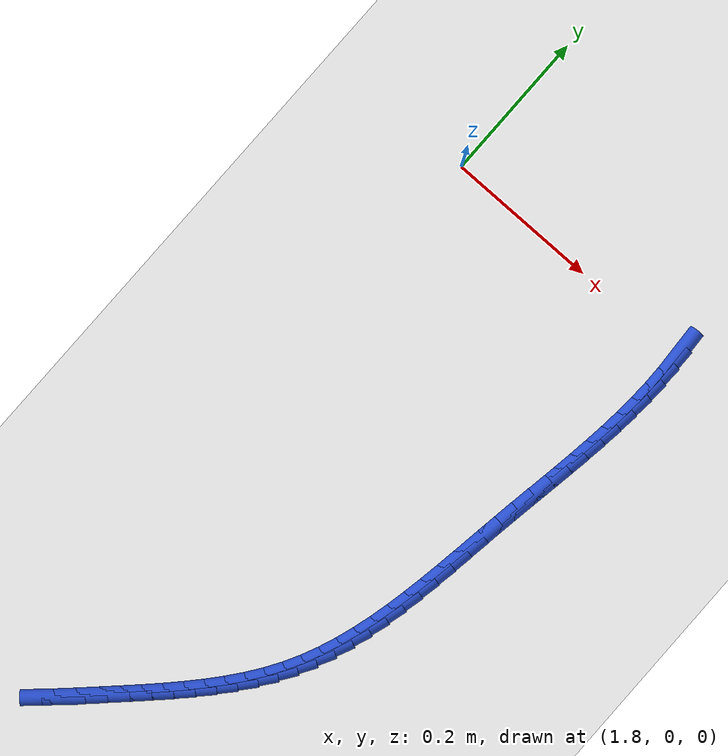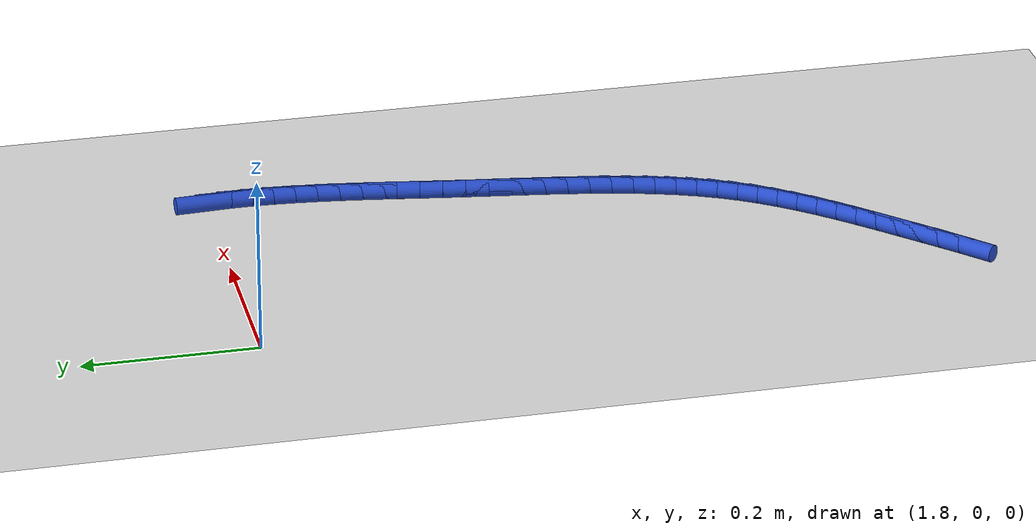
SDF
<sdf version="1.6">
 <world name="default">
  <model name="ground_plane">
   <static>1</static>
   <link name="link">
    <collision name="collision">
     <geometry><plane><normal>0 0 1</normal><size>100 100</size></plane></geometry>
     <surface><friction><ode><mu>100</mu><mu2>50</mu2></ode></friction></surface>
    </collision>
    <visual name="visual">
     <cast_shadows>0</cast_shadows>
     <geometry><plane><normal>0 0 1</normal><size>100 100</size></plane></geometry>
     <material>
      <script><uri>file://media/materials/scripts/gazebo.material</uri><name>Gazebo/WhiteGlow</name></script>
     </material>
    </visual>
   </link>
  </model>
  <model name="line">
   <link name="link_140">
    <pose>2.1530113136298334 -0.0023864541403814978 0.01 0 1.57 -1.5150970873423983</pose>
    <collision name="collision">
     <geometry><cylinder><radius>0.01</radius><length>0.08</length></cylinder></geometry>
    </collision>
    <visual name="visual">
     <material>
      <script><name>Gazebo/Blue</name><uri>file://media/materials/scripts/gazebo.material</uri></script>
     </material>
     <geometry><cylinder><radius>0.01</radius><length>0.08</length></cylinder></geometry>
    </visual>
   </link>
   <link name="link_141">
    <pose>2.154389682944817 -0.027107502641895886 0.01 0 1.57 -1.5627801637763552</pose>
    <collision name="collision">
     <geometry><cylinder><radius>0.01</radius><length>0.08</length></cylinder></geometry>
    </collision>
    <visual name="visual">
     <material>
      <script><name>Gazebo/Blue</name><uri>file://media/materials/scripts/gazebo.material</uri></script>
     </material>
     <geometry><cylinder><radius>0.01</radius><length>0.08</length></cylinder></geometry>
    </visual>
   </link>
   <link name="link_142">
    <pose>2.154590072082908 -0.05210510378216126 0.01 0 1.57 1.5374808848478494</pose>
    <collision name="collision">
     <geometry><cylinder><radius>0.01</radius><length>0.08</length></cylinder></geometry>
    </collision>
    <visual name="visual">
     <material>
      <script><name>Gazebo/Blue</name><uri>file://media/materials/scripts/gazebo.material</uri></script>
     </material>
     <geometry><cylinder><radius>0.01</radius><length>0.08</length></cylinder></geometry>
    </visual>
   </link>
   <link name="link_143">
    <pose>2.1537486216938233 -0.07735282685156224 0.01 0 1.57 1.5023110483691382</pose>
    <collision name="collision">
     <geometry><cylinder><radius>0.01</radius><length>0.08</length></cylinder></geometry>
    </collision>
    <visual name="visual">
     <material>
      <script><name>Gazebo/Blue</name><uri>file://media/materials/scripts/gazebo.material</uri></script>
     </material>
     <geometry><cylinder><radius>0.01</radius><length>0.08</length></cylinder></geometry>
    </visual>
   </link>
   <link name="link_144">
    <pose>2.1520014724272793 -0.10282424114048336 0.01 0 1.57 1.473062830719303</pose>
    <collision name="collision">
     <geometry><cylinder><radius>0.01</radius><length>0.08</length></cylinder></geometry>
    </collision>
    <visual name="visual">
     <material>
      <script><name>Gazebo/Blue</name><uri>file://media/materials/scripts/gazebo.material</uri></script>
     </material>
     <geometry><cylinder><radius>0.01</radius><length>0.08</length></cylinder></geometry>
    </visual>
   </link>
   <link name="link_145">
    <pose>2.149484764932992 -0.12849291593930914 0.01 0 1.57 1.4494837572147774</pose>
    <collision name="collision">
     <geometry><cylinder><radius>0.01</radius><length>0.08</length></cylinder></geometry>
    </collision>
    <visual name="visual">
     <material>
      <script><name>Gazebo/Blue</name><uri>file://media/materials/scripts/gazebo.material</uri></script>
     </material>
     <geometry><cylinder><radius>0.01</radius><length>0.08</length></cylinder></geometry>
    </visual>
   </link>
   <link name="link_146">
    <pose>2.1463346398606755 -0.15433242053842483 0.01 0 1.57 1.4313359523526898</pose>
    <collision name="collision">
     <geometry><cylinder><radius>0.01</radius><length>0.08</length></cylinder></geometry>
    </collision>
    <visual name="visual">
     <material>
      <script><name>Gazebo/Blue</name><uri>file://media/materials/scripts/gazebo.material</uri></script>
     </material>
     <geometry><cylinder><radius>0.01</radius><length>0.08</length></cylinder></geometry>
    </visual>
   </link>
   <link name="link_147">
    <pose>2.142687237860049 -0.18031632422821353 0.01 0 1.57 1.4184140166876744</pose>
    <collision name="collision">
     <geometry><cylinder><radius>0.01</radius><length>0.08</length></cylinder></geometry>
    </collision>
    <visual name="visual">
     <material>
      <script><name>Gazebo/Blue</name><uri>file://media/materials/scripts/gazebo.material</uri></script>
     </material>
     <geometry><cylinder><radius>0.01</radius><length>0.08</length></cylinder></geometry>
    </visual>
   </link>
   <link name="link_148">
    <pose>2.1386786995808262 -0.20641819629906044 0.01 0 1.57 1.410556134013466</pose>
    <collision name="collision">
     <geometry><cylinder><radius>0.01</radius><length>0.08</length></cylinder></geometry>
    </collision>
    <visual name="visual">
     <material>
      <script><name>Gazebo/Blue</name><uri>file://media/materials/scripts/gazebo.material</uri></script>
     </material>
     <geometry><cylinder><radius>0.01</radius><length>0.08</length></cylinder></geometry>
    </visual>
   </link>
   <link name="link_149">
    <pose>2.134445165672724 -0.23261160604135012 0.01 0 1.57 1.4076503426495297</pose>
    <collision name="collision">
     <geometry><cylinder><radius>0.01</radius><length>0.08</length></cylinder></geometry>
    </collision>
    <visual name="visual">
     <material>
      <script><name>Gazebo/Blue</name><uri>file://media/materials/scripts/gazebo.material</uri></script>
     </material>
     <geometry><cylinder><radius>0.01</radius><length>0.08</length></cylinder></geometry>
    </visual>
   </link>
   <link name="link_150">
    <pose>2.1301227767854587 -0.2588701227454671 0.01 0 1.57 1.4096373887586944</pose>
    <collision name="collision">
     <geometry><cylinder><radius>0.01</radius><length>0.08</length></cylinder></geometry>
    </collision>
    <visual name="visual">
     <material>
      <script><name>Gazebo/Blue</name><uri>file://media/materials/scripts/gazebo.material</uri></script>
     </material>
     <geometry><cylinder><radius>0.01</radius><length>0.08</length></cylinder></geometry>
    </visual>
   </link>
   <link name="link_151">
    <pose>2.125847673568747 -0.2851673157017961 0.01 0 1.57 1.416174824912703</pose>
    <collision name="collision">
     <geometry><cylinder><radius>0.01</radius><length>0.08</length></cylinder></geometry>
    </collision>
    <visual name="visual">
     <material>
      <script><name>Gazebo/Blue</name><uri>file://media/materials/scripts/gazebo.material</uri></script>
     </material>
     <geometry><cylinder><radius>0.01</radius><length>0.08</length></cylinder></geometry>
    </visual>
   </link>
   <link name="link_152">
    <pose>2.121747126071299 -0.3114755385293608 0.01 0 1.57 1.4217603952780513</pose>
    <collision name="collision">
     <geometry><cylinder><radius>0.01</radius><length>0.08</length></cylinder></geometry>
    </collision>
    <visual name="visual">
     <material>
      <script><name>Gazebo/Blue</name><uri>file://media/materials/scripts/gazebo.material</uri></script>
     </material>
     <geometry><cylinder><radius>0.01</radius><length>0.08</length></cylinder></geometry>
    </visual>
   </link>
   <link name="link_153">
    <pose>2.1178024635806953 -0.33774714439810755 0.01 0 1.57 1.421857288675517</pose>
    <collision name="collision">
     <geometry><cylinder><radius>0.01</radius><length>0.08</length></cylinder></geometry>
    </collision>
    <visual name="visual">
     <material>
      <script><name>Gazebo/Blue</name><uri>file://media/materials/scripts/gazebo.material</uri></script>
     </material>
     <geometry><cylinder><radius>0.01</radius><length>0.08</length></cylinder></geometry>
    </visual>
   </link>
   <link name="link_154">
    <pose>2.1138755053440113 -0.363918108226556 0.01 0 1.57 1.4162671577664259</pose>
    <collision name="collision">
     <geometry><cylinder><radius>0.01</radius><length>0.08</length></cylinder></geometry>
    </collision>
    <visual name="visual">
     <material>
      <script><name>Gazebo/Blue</name><uri>file://media/materials/scripts/gazebo.material</uri></script>
     </material>
     <geometry><cylinder><radius>0.01</radius><length>0.08</length></cylinder></geometry>
    </visual>
   </link>
   <link name="link_155">
    <pose>2.1098245523906796 -0.38992392277915017 0.01 0 1.57 1.4048693957513423</pose>
    <collision name="collision">
     <geometry><cylinder><radius>0.01</radius><length>0.08</length></cylinder></geometry>
    </collision>
    <visual name="visual">
     <material>
      <script><name>Gazebo/Blue</name><uri>file://media/materials/scripts/gazebo.material</uri></script>
     </material>
     <geometry><cylinder><radius>0.01</radius><length>0.08</length></cylinder></geometry>
    </visual>
   </link>
   <link name="link_156">
    <pose>2.105507905750132 -0.4157000808203319 0.01 0 1.57 1.3874900585366983</pose>
    <collision name="collision">
     <geometry><cylinder><radius>0.01</radius><length>0.08</length></cylinder></geometry>
    </collision>
    <visual name="visual">
     <material>
      <script><name>Gazebo/Blue</name><uri>file://media/materials/scripts/gazebo.material</uri></script>
     </material>
     <geometry><cylinder><radius>0.01</radius><length>0.08</length></cylinder></geometry>
    </visual>
   </link>
   <link name="link_157">
    <pose>2.100783866451798 -0.44118207511454494 0.01 0 1.57 1.3639096185430233</pose>
    <collision name="collision">
     <geometry><cylinder><radius>0.01</radius><length>0.08</length></cylinder></geometry>
    </collision>
    <visual name="visual">
     <material>
      <script><name>Gazebo/Blue</name><uri>file://media/materials/scripts/gazebo.material</uri></script>
     </material>
     <geometry><cylinder><radius>0.01</radius><length>0.08</length></cylinder></geometry>
    </visual>
   </link>
   <link name="link_158">
    <pose>2.095510735525109 -0.46630539842623253 0.01 0 1.57 1.3338780341916145</pose>
    <collision name="collision">
     <geometry><cylinder><radius>0.01</radius><length>0.08</length></cylinder></geometry>
    </collision>
    <visual name="visual">
     <material>
      <script><name>Gazebo/Blue</name><uri>file://media/materials/scripts/gazebo.material</uri></script>
     </material>
     <geometry><cylinder><radius>0.01</radius><length>0.08</length></cylinder></geometry>
    </visual>
   </link>
   <link name="link_159">
    <pose>2.089546813999497 -0.4910055435198383 0.01 0 1.57 1.2971396398338622</pose>
    <collision name="collision">
     <geometry><cylinder><radius>0.01</radius><length>0.08</length></cylinder></geometry>
    </collision>
    <visual name="visual">
     <material>
      <script><name>Gazebo/Blue</name><uri>file://media/materials/scripts/gazebo.material</uri></script>
     </material>
     <geometry><cylinder><radius>0.01</radius><length>0.08</length></cylinder></geometry>
    </visual>
   </link>
   <link name="link_160">
    <pose>2.0827504029043915 -0.5152180031598048 0.01 0 1.57 1.2534706558774653</pose>
    <collision name="collision">
     <geometry><cylinder><radius>0.01</radius><length>0.08</length></cylinder></geometry>
    </collision>
    <visual name="visual">
     <material>
      <script><name>Gazebo/Blue</name><uri>file://media/materials/scripts/gazebo.material</uri></script>
     </material>
     <geometry><cylinder><radius>0.01</radius><length>0.08</length></cylinder></geometry>
    </visual>
   </link>
   <link name="link_161">
    <pose>2.0749798032692253 -0.5388782701105759 0.01 0 1.57 1.2027315082468875</pose>
    <collision name="collision">
     <geometry><cylinder><radius>0.01</radius><length>0.08</length></cylinder></geometry>
    </collision>
    <visual name="visual">
     <material>
      <script><name>Gazebo/Blue</name><uri>file://media/materials/scripts/gazebo.material</uri></script>
     </material>
     <geometry><cylinder><radius>0.01</radius><length>0.08</length></cylinder></geometry>
    </visual>
   </link>
   <link name="link_162">
    <pose>2.0660933161234283 -0.5619218371365945 0.01 0 1.57 1.144933864160831</pose>
    <collision name="collision">
     <geometry><cylinder><radius>0.01</radius><length>0.08</length></cylinder></geometry>
    </collision>
    <visual name="visual">
     <material>
      <script><name>Gazebo/Blue</name><uri>file://media/materials/scripts/gazebo.material</uri></script>
     </material>
     <geometry><cylinder><radius>0.01</radius><length>0.08</length></cylinder></geometry>
    </visual>
   </link>
   <link name="link_163">
    <pose>2.055949242496432 -0.5842841970023039 0.01 0 1.57 1.0804335246749819</pose>
    <collision name="collision">
     <geometry><cylinder><radius>0.01</radius><length>0.08</length></cylinder></geometry>
    </collision>
    <visual name="visual">
     <material>
      <script><name>Gazebo/Blue</name><uri>file://media/materials/scripts/gazebo.material</uri></script>
     </material>
     <geometry><cylinder><radius>0.01</radius><length>0.08</length></cylinder></geometry>
    </visual>
   </link>
   <link name="link_164">
    <pose>2.0444083294327555 -0.6059022939027575 0.01 0 1.57 1.015130740274832</pose>
    <collision name="collision">
     <geometry><cylinder><radius>0.01</radius><length>0.08</length></cylinder></geometry>
    </collision>
    <visual name="visual">
     <material>
      <script><name>Gazebo/Blue</name><uri>file://media/materials/scripts/gazebo.material</uri></script>
     </material>
     <geometry><cylinder><radius>0.01</radius><length>0.08</length></cylinder></geometry>
    </visual>
   </link>
   <link name="link_165">
    <pose>2.0314446025688695 -0.6267802899404081 0.01 0 1.57 0.9571397587294276</pose>
    <collision name="collision">
     <geometry><cylinder><radius>0.01</radius><length>0.08</length></cylinder></geometry>
    </collision>
    <visual name="visual">
     <material>
      <script><name>Gazebo/Blue</name><uri>file://media/materials/scripts/gazebo.material</uri></script>
     </material>
     <geometry><cylinder><radius>0.01</radius><length>0.08</length></cylinder></geometry>
    </visual>
   </link>
   <link name="link_166">
    <pose>2.0171907242866363 -0.6470164800090789 0.01 0 1.57 0.9073055677215559</pose>
    <collision name="collision">
     <geometry><cylinder><radius>0.01</radius><length>0.08</length></cylinder></geometry>
    </collision>
    <visual name="visual">
     <material>
      <script><name>Gazebo/Blue</name><uri>file://media/materials/scripts/gazebo.material</uri></script>
     </material>
     <geometry><cylinder><radius>0.01</radius><length>0.08</length></cylinder></geometry>
    </visual>
   </link>
   <link name="link_167">
    <pose>2.0017911983624144 -0.6667161855178844 0.01 0 1.57 0.8656274844278314</pose>
    <collision name="collision">
     <geometry><cylinder><radius>0.01</radius><length>0.08</length></cylinder></geometry>
    </collision>
    <visual name="visual">
     <material>
      <script><name>Gazebo/Blue</name><uri>file://media/materials/scripts/gazebo.material</uri></script>
     </material>
     <geometry><cylinder><radius>0.01</radius><length>0.08</length></cylinder></geometry>
    </visual>
   </link>
   <link name="link_168">
    <pose>1.98539052857256 -0.685984727875939 0.01 0 1.57 0.8319223088741331</pose>
    <collision name="collision">
     <geometry><cylinder><radius>0.01</radius><length>0.08</length></cylinder></geometry>
    </collision>
    <visual name="visual">
     <material>
      <script><name>Gazebo/Blue</name><uri>file://media/materials/scripts/gazebo.material</uri></script>
     </material>
     <geometry><cylinder><radius>0.01</radius><length>0.08</length></cylinder></geometry>
    </visual>
   </link>
   <link name="link_169">
    <pose>1.9681332186934322 -0.7049274284923577 0.01 0 1.57 0.8059104325286219</pose>
    <collision name="collision">
     <geometry><cylinder><radius>0.01</radius><length>0.08</length></cylinder></geometry>
    </collision>
    <visual name="visual">
     <material>
      <script><name>Gazebo/Blue</name><uri>file://media/materials/scripts/gazebo.material</uri></script>
     </material>
     <geometry><cylinder><radius>0.01</radius><length>0.08</length></cylinder></geometry>
    </visual>
   </link>
   <link name="link_170">
    <pose>1.9501637725013874 -0.7236496087762544 0.01 0 1.57 0.7872800941608987</pose>
    <collision name="collision">
     <geometry><cylinder><radius>0.01</radius><length>0.08</length></cylinder></geometry>
    </collision>
    <visual name="visual">
     <material>
      <script><name>Gazebo/Blue</name><uri>file://media/materials/scripts/gazebo.material</uri></script>
     </material>
     <geometry><cylinder><radius>0.01</radius><length>0.08</length></cylinder></geometry>
    </visual>
   </link>
   <link name="link_171">
    <pose>1.931626693772783 -0.7422565901367437 0.01 0 1.57 0.7757304764082015</pose>
    <collision name="collision">
     <geometry><cylinder><radius>0.01</radius><length>0.08</length></cylinder></geometry>
    </collision>
    <visual name="visual">
     <material>
      <script><name>Gazebo/Blue</name><uri>file://media/materials/scripts/gazebo.material</uri></script>
     </material>
     <geometry><cylinder><radius>0.01</radius><length>0.08</length></cylinder></geometry>
    </visual>
   </link>
   <link name="link_172">
    <pose>1.9126664862839775 -0.7608536939829406 0.01 0 1.57 0.7709663297961078</pose>
    <collision name="collision">
     <geometry><cylinder><radius>0.01</radius><length>0.08</length></cylinder></geometry>
    </collision>
    <visual name="visual">
     <material>
      <script><name>Gazebo/Blue</name><uri>file://media/materials/scripts/gazebo.material</uri></script>
     </material>
     <geometry><cylinder><radius>0.01</radius><length>0.08</length></cylinder></geometry>
    </visual>
   </link>
   <link name="link_173">
    <pose>1.893427239478528 -0.7795454883065586 0.01 0 1.57 0.768526776129079</pose>
    <collision name="collision">
     <geometry><cylinder><radius>0.01</radius><length>0.08</length></cylinder></geometry>
    </collision>
    <visual name="visual">
     <material>
      <script><name>Gazebo/Blue</name><uri>file://media/materials/scripts/gazebo.material</uri></script>
     </material>
     <geometry><cylinder><radius>0.01</radius><length>0.08</length></cylinder></geometry>
    </visual>
   </link>
   <link name="link_174">
    <pose>1.8739956649788838 -0.7983322060117092 0.01 0 1.57 0.759806169784082</pose>
    <collision name="collision">
     <geometry><cylinder><radius>0.01</radius><length>0.08</length></cylinder></geometry>
    </collision>
    <visual name="visual">
     <material>
      <script><name>Gazebo/Blue</name><uri>file://media/materials/scripts/gazebo.material</uri></script>
     </material>
     <geometry><cylinder><radius>0.01</radius><length>0.08</length></cylinder></geometry>
    </visual>
   </link>
   <link name="link_175">
    <pose>1.8543429126677236 -0.8170039440299565 0.01 0 1.57 0.7437096567565353</pose>
    <collision name="collision">
     <geometry><cylinder><radius>0.01</radius><length>0.08</length></cylinder></geometry>
    </collision>
    <visual name="visual">
     <material>
      <script><name>Gazebo/Blue</name><uri>file://media/materials/scripts/gazebo.material</uri></script>
     </material>
     <geometry><cylinder><radius>0.01</radius><length>0.08</length></cylinder></geometry>
    </visual>
   </link>
  </model>
 </world>
</sdf>
